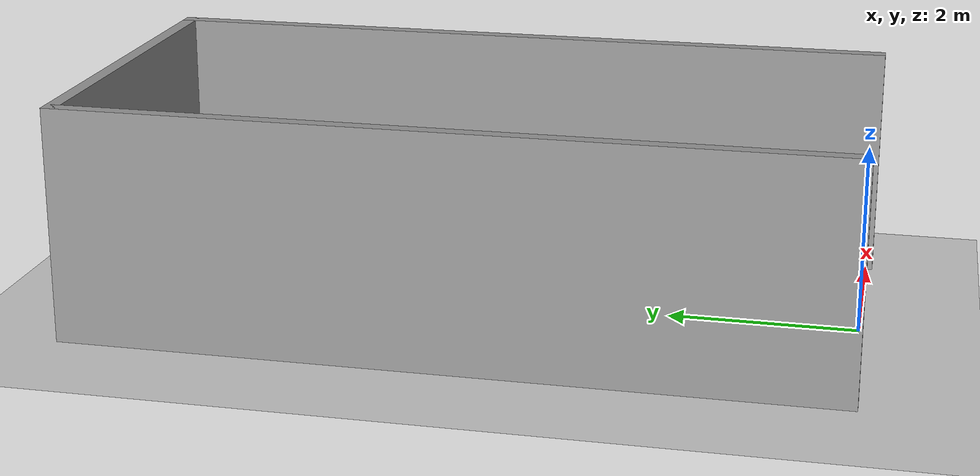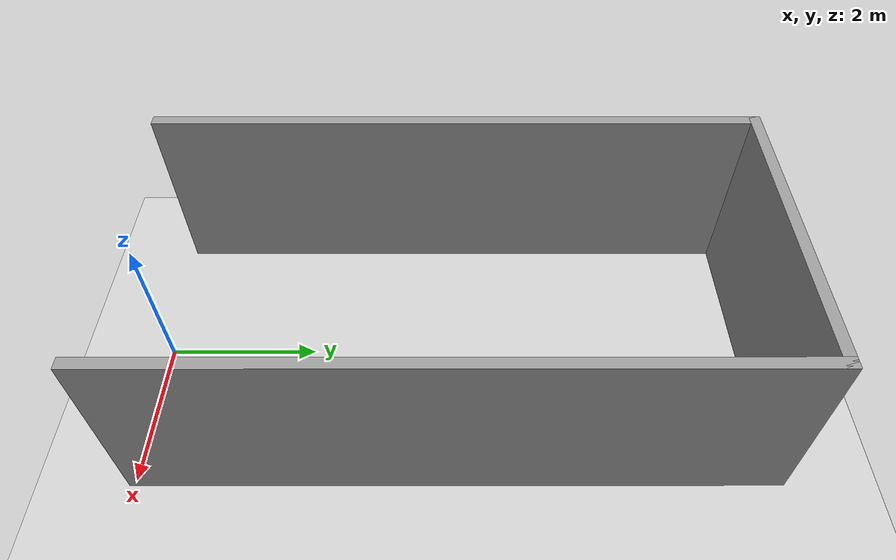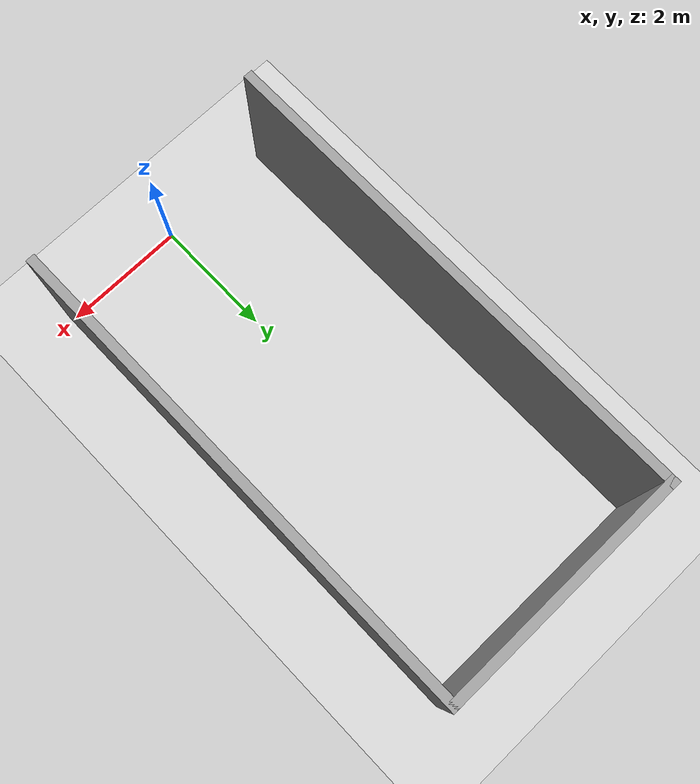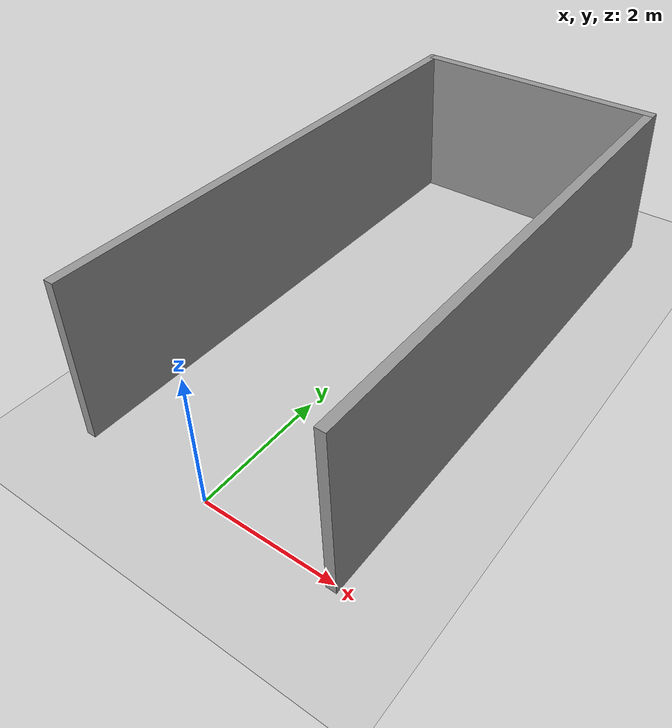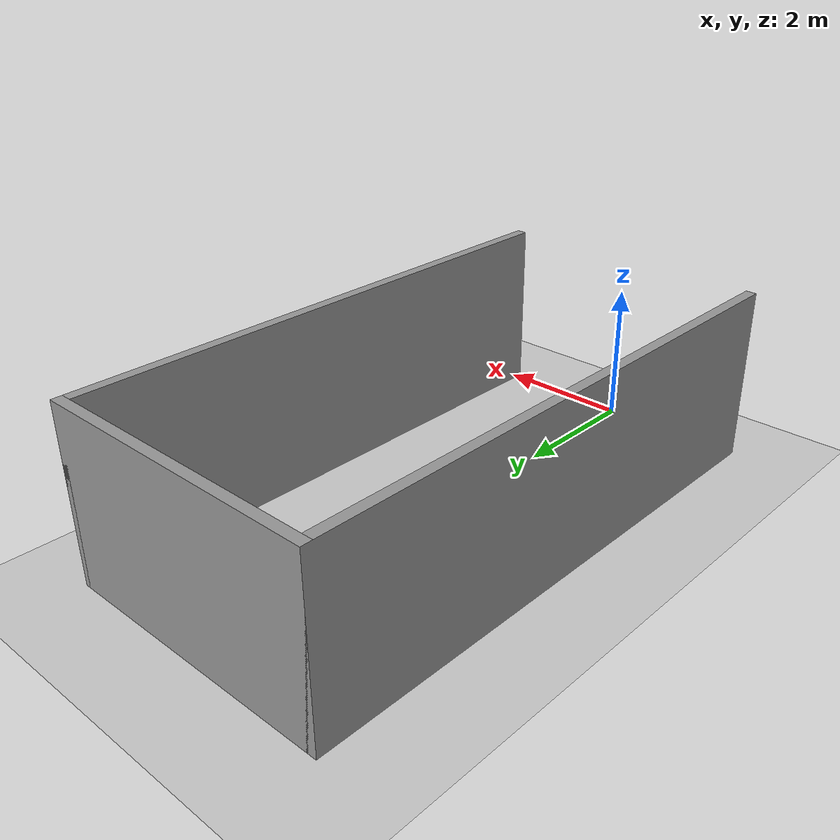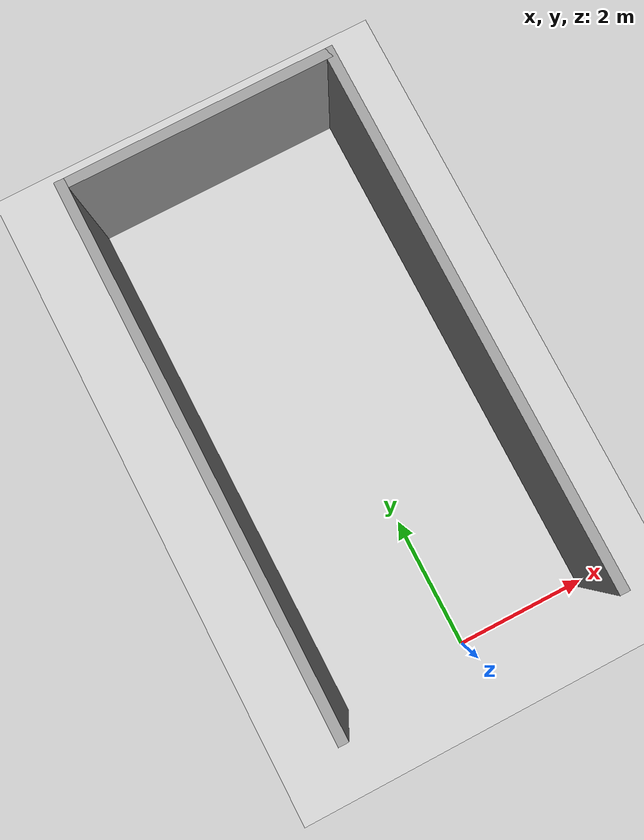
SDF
<sdf version="1.6">
 <world name="default">
  <light name="sun" type="directional">
   <pose>0 0 10 0 -0 0</pose>
   <diffuse>0.8 0.8 0.8 1</diffuse>
   <specular>0.2 0.2 0.2 1</specular>
   <attenuation>
    <range>1000</range>
    <constant>0.9</constant>
    <linear>0.01</linear>
    <quadratic>0.001</quadratic>
   </attenuation>
   <direction>-0.5 0.1 -0.9</direction>
  </light>
  <model name="ground_plane">
   <static>1</static>
   <link name="link">
    <collision name="collision">
     <geometry><plane><normal>0 0 1</normal><size>100 100</size></plane></geometry>
     <surface>
      <contact><collide_bitmask>65535</collide_bitmask></contact>
      <friction><ode><mu>100</mu><mu2>50</mu2></ode></friction>
     </surface>
    </collision>
    <visual name="visual">
     <cast_shadows>0</cast_shadows>
     <geometry><plane><normal>0 0 1</normal><size>100 100</size></plane></geometry>
     <material>
      <script><uri>file://media/materials/scripts/gazebo.material</uri><name>Gazebo/Grey</name></script>
     </material>
    </visual>
   </link>
  </model>
  <gravity>0 0 -9.8</gravity>
  <magnetic_field>6e-06 2.3e-05 -4.2e-05</magnetic_field>
  <atmosphere type="adiabatic"/>
  <physics name="default_physics" default="0" type="ode">
   <max_step_size>0.001</max_step_size>
   <real_time_factor>1</real_time_factor>
   <real_time_update_rate>1000</real_time_update_rate>
   <ode>
    <solver>
     <type>quick</type>
     <iters>10</iters>
     <sor>1.3</sor>
     <use_dynamic_moi_rescaling>0</use_dynamic_moi_rescaling>
    </solver>
    <constraints>
     <cfm>0</cfm>
     <erp>0.2</erp>
     <contact_max_correcting_vel>100</contact_max_correcting_vel>
     <contact_surface_layer>0.001</contact_surface_layer>
    </constraints>
   </ode>
  </physics>
  <scene><ambient>0.4 0.4 0.4 1</ambient><background>0.7 0.7 0.7 1</background><shadows>1</shadows></scene>
  <spherical_coordinates>
   <surface_model>EARTH_WGS84</surface_model>
   <latitude_deg>0</latitude_deg>
   <longitude_deg>0</longitude_deg>
   <elevation>0</elevation>
   <heading_deg>0</heading_deg>
  </spherical_coordinates>
  <model name="compare">
   <pose>0 4 0 0 -0 0</pose>
   <link name="Wall_0">
    <collision name="Wall_0_Collision">
     <geometry><box><size>8.15 0.15 2.5</size></box></geometry>
     <pose>0 0 1.25 0 -0 0</pose>
    </collision>
    <visual name="Wall_0_Visual">
     <pose>0 0 1.25 0 -0 0</pose>
     <geometry><box><size>8.15 0.15 2.5</size></box></geometry>
     <material>
      <script><uri>file://media/materials/scripts/gazebo.material</uri><name>Gazebo/Grey</name></script>
      <ambient>1 1 1 1</ambient>
     </material>
     <meta><layer>0</layer></meta>
    </visual>
    <pose>-2 -0 0 0 -0 1.5708</pose>
   </link>
   <link name="Wall_2">
    <collision name="Wall_2_Collision">
     <geometry><box><size>4.15 0.15 2.5</size></box></geometry>
     <pose>0 0 1.25 0 -0 0</pose>
    </collision>
    <visual name="Wall_2_Visual">
     <pose>0 0 1.25 0 -0 0</pose>
     <geometry><box><size>4.15 0.15 2.5</size></box></geometry>
     <material>
      <script><uri>file://media/materials/scripts/gazebo.material</uri><name>Gazebo/Grey</name></script>
      <ambient>1 1 1 1</ambient>
     </material>
     <meta><layer>0</layer></meta>
    </visual>
    <pose>0 4 0 0 -0 0</pose>
   </link>
   <link name="Wall_4">
    <collision name="Wall_4_Collision">
     <geometry><box><size>8.15 0.15 2.5</size></box></geometry>
     <pose>0 0 1.25 0 -0 0</pose>
    </collision>
    <visual name="Wall_4_Visual">
     <pose>0 0 1.25 0 -0 0</pose>
     <geometry><box><size>8.15 0.15 2.5</size></box></geometry>
     <material>
      <script><uri>file://media/materials/scripts/gazebo.material</uri><name>Gazebo/Grey</name></script>
      <ambient>1 1 1 1</ambient>
     </material>
     <meta><layer>0</layer></meta>
    </visual>
    <pose>2 -0 0 0 -0 -1.5708</pose>
   </link>
   <static>1</static>
  </model>
 </world>
</sdf>
